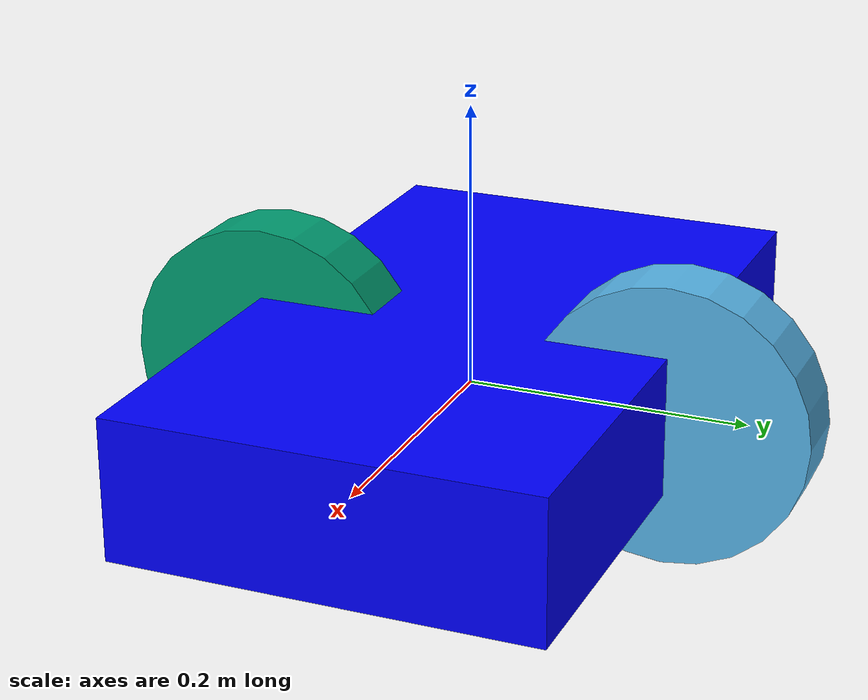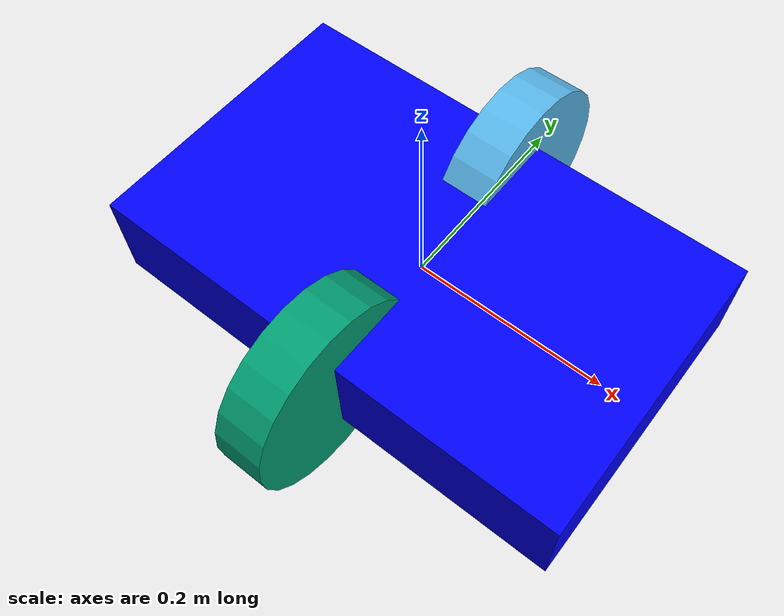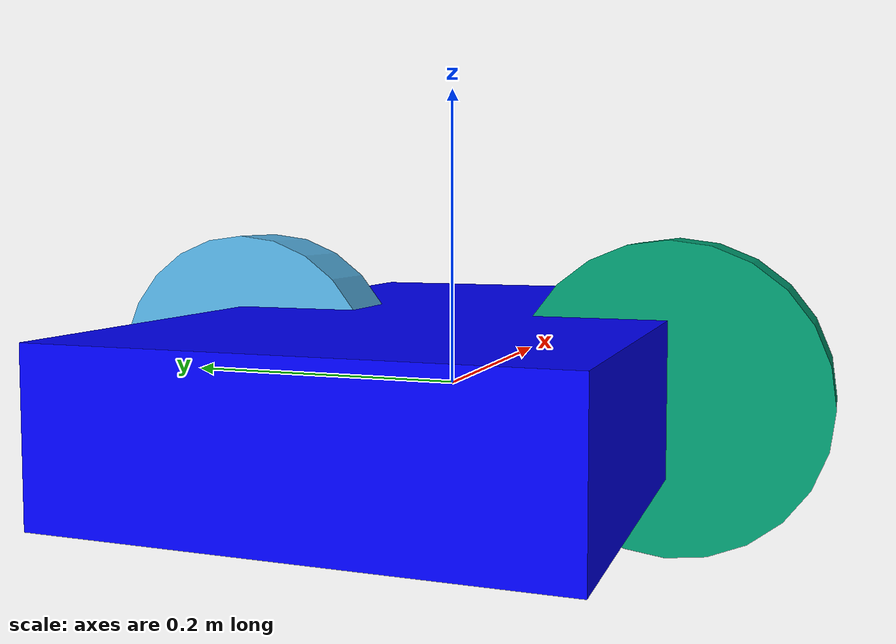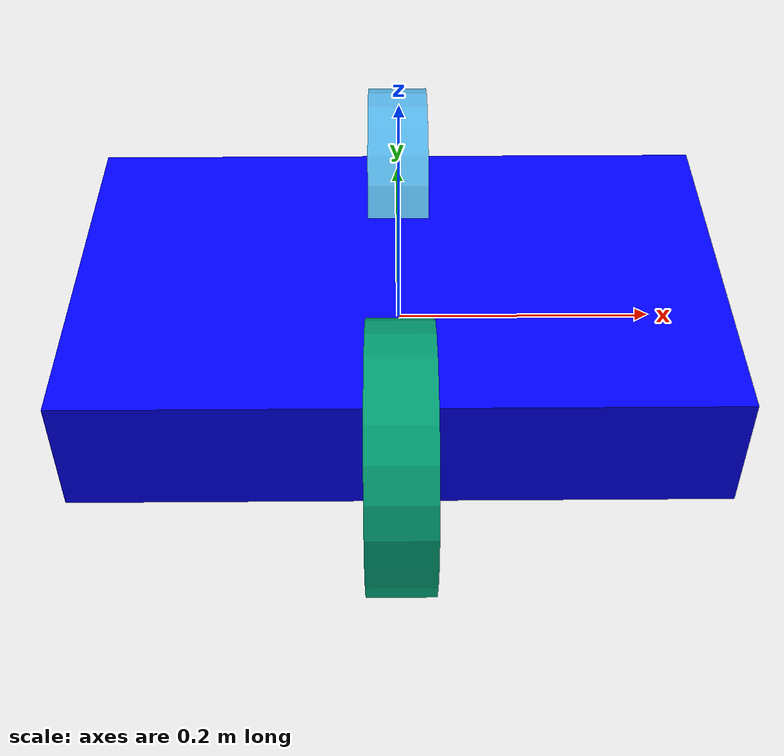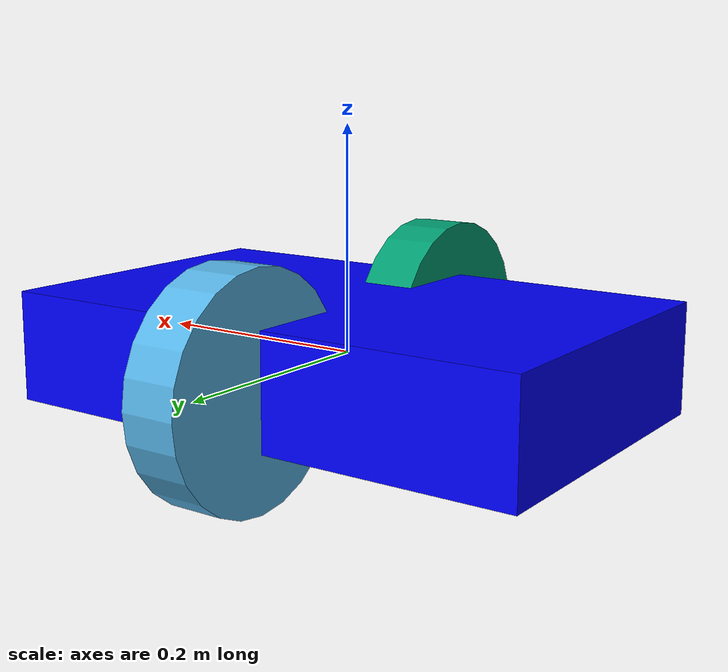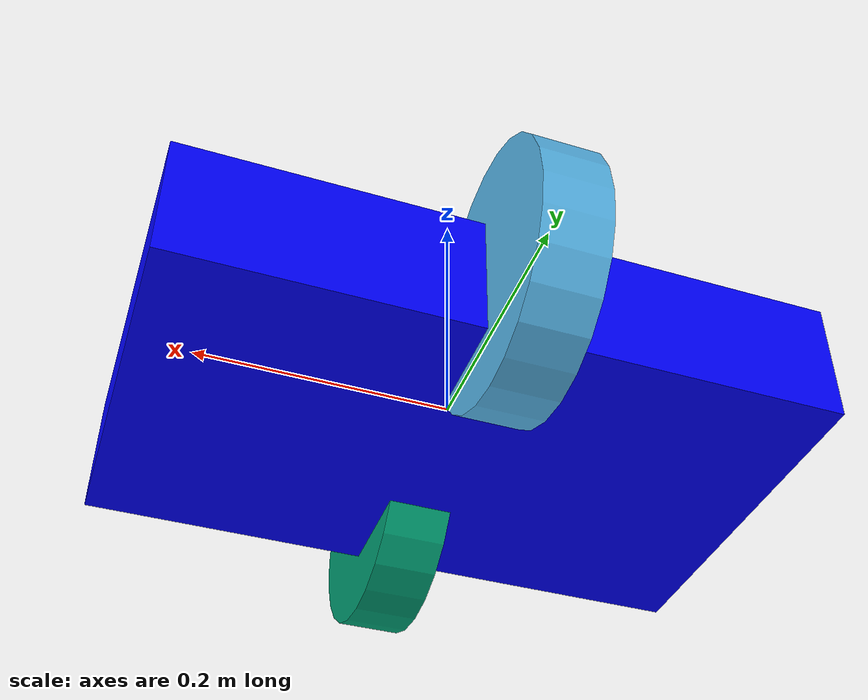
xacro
<?xml version="1.0"?>
<robot xmlns:xacro="http://wiki.ros.org/xacro" name="agv">
  <xacro:property name="wheel_radius" value="0.1"/>
  <xacro:property name="wheel_separation" value="0.3"/>
  <link name="base_link">
    <inertial>
      <mass value="10"/>
      <origin xyz="0 0 0"/>
      <inertia ixx="0.1" iyy="0.1" izz="0.1"/>
    </inertial>
    <visual>
      <geometry><box size="0.5 0.3 0.1"/></geometry>
      <material><color rgba="0 0 1 1"/></material>
    </visual>
    <collision>
      <geometry><box size="0.5 0.3 0.1"/></geometry>
    </collision>
  </link>
  <link name="left_wheel_link">
    <visual><geometry><cylinder length="0.05" radius="${wheel_radius}"/></geometry></visual>
  </link>
  <link name="right_wheel_link">
    <visual><geometry><cylinder length="0.05" radius="${wheel_radius}"/></geometry></visual>
  </link>
  <joint name="left_wheel_joint" type="continuous">
    <parent link="base_link"/><child link="left_wheel_link"/>
    <origin xyz="0 ${wheel_separation/2} 0" rpy="0 1.5708 0"/>
    <axis xyz="0 0 1"/>
  </joint>
  <joint name="right_wheel_joint" type="continuous">
    <parent link="base_link"/><child link="right_wheel_link"/>
    <origin xyz="0 -${wheel_separation/2} 0" rpy="0 1.5708 0"/>
    <axis xyz="0 0 1"/>
  </joint>
  <gazebo>
    <plugin name="diff_drive_controller" filename="libgazebo_ros_diff_drive.so">
      <ros>
        <namespace>/</namespace>
        <remapping>cmd_vel:=cmd_vel</remapping>
      </ros>
      <updateRate>100.0</updateRate>
      <leftJoint>left_wheel_joint</leftJoint>
      <rightJoint>right_wheel_joint</rightJoint>
      <wheelSeparation>${wheel_separation}</wheelSeparation>
      <wheelDiameter>${wheel_radius*2}</wheelDiameter>
    </plugin>
  </gazebo>
</robot>
